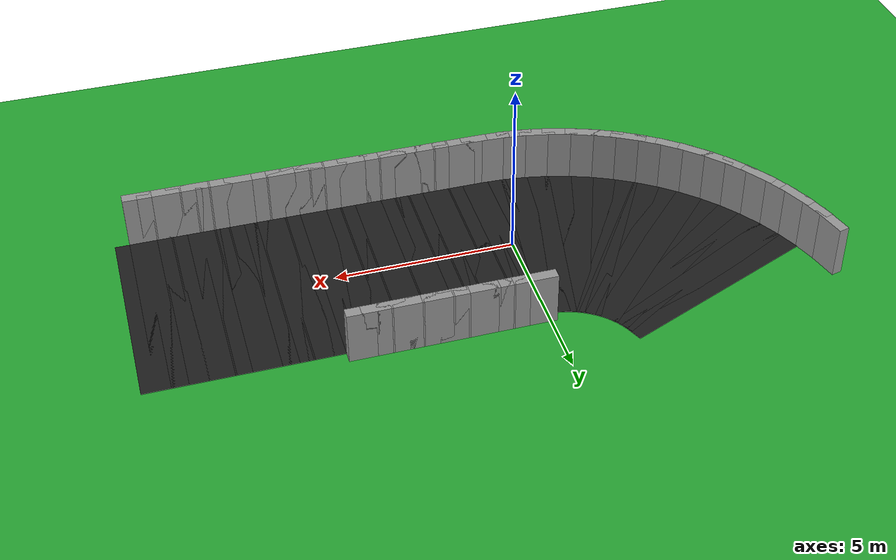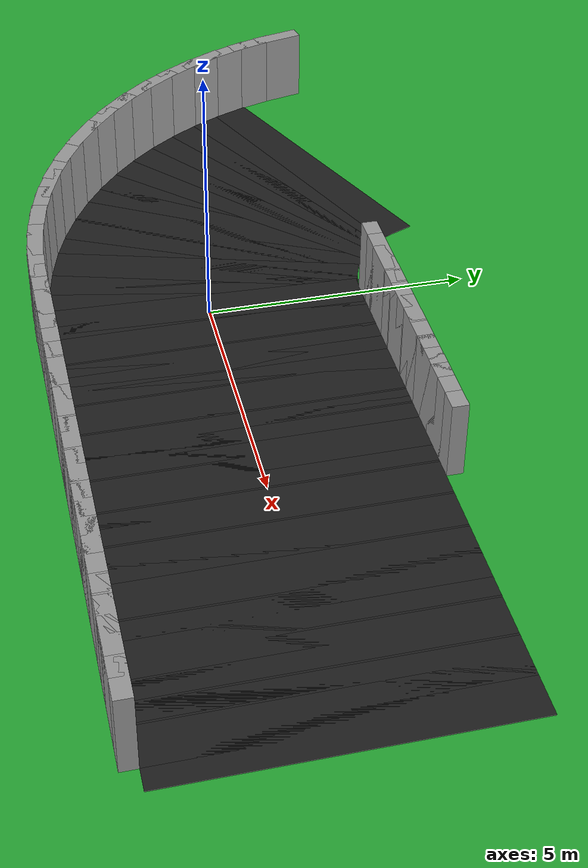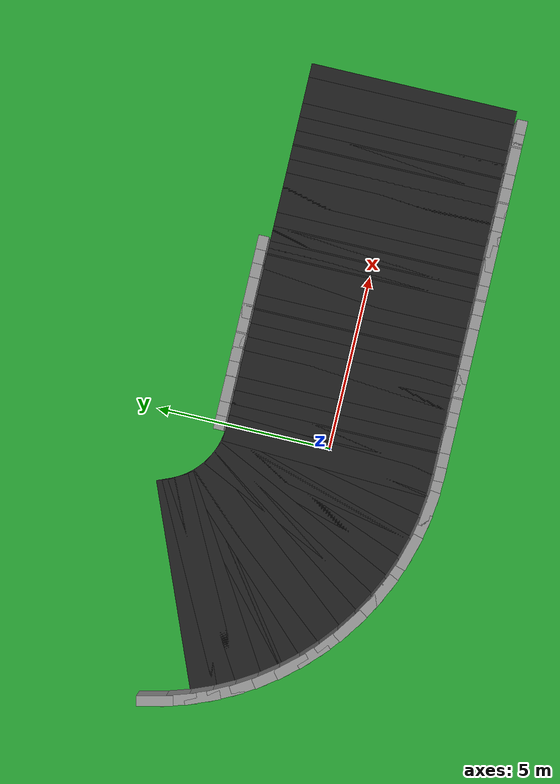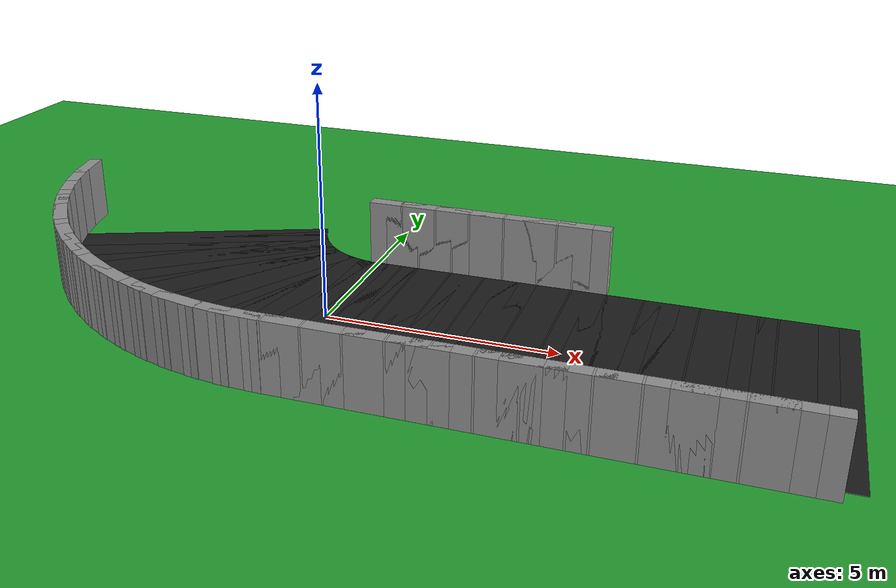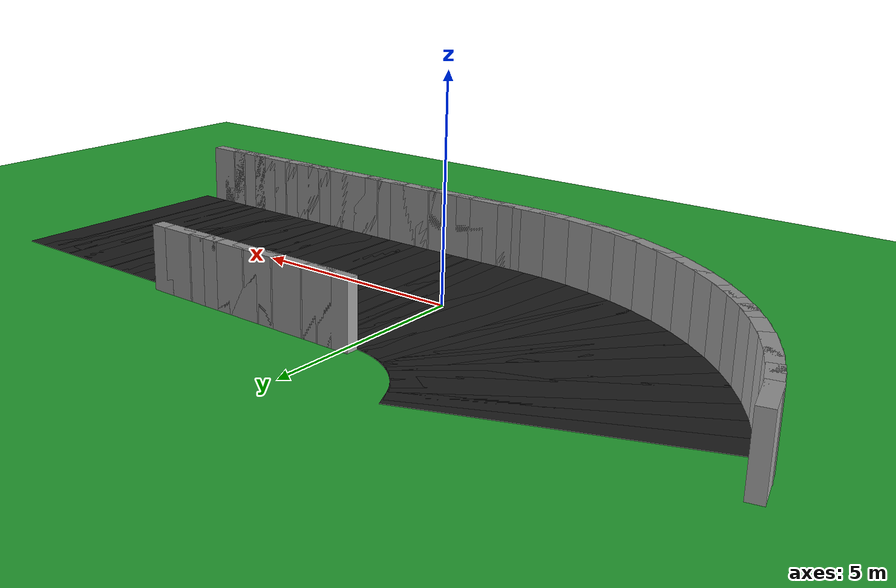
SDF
<sdf version="1.6">
 <world name="loop_road">
  <include><uri>model://sun</uri></include>
  <model name="ground_plane">
   <static>true</static>
   <link name="link">
    <collision name="collision">
     <surface><friction><ode><mu>100</mu><mu2>50</mu2></ode></friction></surface>
     <geometry><plane><normal>0 0 1</normal><size>120 120</size></plane></geometry>
    </collision>
    <visual name="visual">
     <geometry><plane><normal>0 0 1</normal><size>120 120</size></plane></geometry>
     <material>
      <script><uri>file://media/materials/scripts/gazebo.material</uri><name>Gazebo/Green</name></script>
     </material>
    </visual>
   </link>
  </model>
  <model name="asphalt_0">
   <static>true</static>
   <pose>0.200 0.000 0.005 0 0 0.00000</pose>
   <link name="link">
    <visual name="visual">
     <geometry><box><size>0.760 6.000 0.010</size></box></geometry>
     <material>
      <script><uri>file://media/materials/scripts/gazebo.material</uri><name>Gazebo/Black</name></script>
     </material>
    </visual>
   </link>
  </model>
  <model name="curbL_0">
   <static>true</static>
   <pose>0.200 3.150 0.750 0 0 0.00000</pose>
   <link name="link">
    <collision name="collision"><geometry><box><size>0.760 0.300 1.500</size></box></geometry></collision>
    <visual name="visual">
     <geometry><box><size>0.760 0.300 1.500</size></box></geometry>
     <material>
      <script><uri>file://media/materials/scripts/gazebo.material</uri><name>Gazebo/Grey</name></script>
     </material>
    </visual>
   </link>
  </model>
  <model name="curbR_0">
   <static>true</static>
   <pose>0.200 -3.150 0.750 0 0 0.00000</pose>
   <link name="link">
    <collision name="collision"><geometry><box><size>0.760 0.300 1.500</size></box></geometry></collision>
    <visual name="visual">
     <geometry><box><size>0.760 0.300 1.500</size></box></geometry>
     <material>
      <script><uri>file://media/materials/scripts/gazebo.material</uri><name>Gazebo/Grey</name></script>
     </material>
    </visual>
   </link>
  </model>
  <model name="asphalt_1">
   <static>true</static>
   <pose>0.600 0.000 0.005 0 0 0.00000</pose>
   <link name="link">
    <visual name="visual">
     <geometry><box><size>0.760 6.000 0.010</size></box></geometry>
     <material>
      <script><uri>file://media/materials/scripts/gazebo.material</uri><name>Gazebo/Black</name></script>
     </material>
    </visual>
   </link>
  </model>
  <model name="curbL_1">
   <static>true</static>
   <pose>0.600 3.150 0.750 0 0 0.00000</pose>
   <link name="link">
    <collision name="collision"><geometry><box><size>0.760 0.300 1.500</size></box></geometry></collision>
    <visual name="visual">
     <geometry><box><size>0.760 0.300 1.500</size></box></geometry>
     <material>
      <script><uri>file://media/materials/scripts/gazebo.material</uri><name>Gazebo/Grey</name></script>
     </material>
    </visual>
   </link>
  </model>
  <model name="curbR_1">
   <static>true</static>
   <pose>0.600 -3.150 0.750 0 0 0.00000</pose>
   <link name="link">
    <collision name="collision"><geometry><box><size>0.760 0.300 1.500</size></box></geometry></collision>
    <visual name="visual">
     <geometry><box><size>0.760 0.300 1.500</size></box></geometry>
     <material>
      <script><uri>file://media/materials/scripts/gazebo.material</uri><name>Gazebo/Grey</name></script>
     </material>
    </visual>
   </link>
  </model>
  <model name="asphalt_2">
   <static>true</static>
   <pose>1.000 0.000 0.005 0 0 0.00000</pose>
   <link name="link">
    <visual name="visual">
     <geometry><box><size>0.760 6.000 0.010</size></box></geometry>
     <material>
      <script><uri>file://media/materials/scripts/gazebo.material</uri><name>Gazebo/Black</name></script>
     </material>
    </visual>
   </link>
  </model>
  <model name="curbL_2">
   <static>true</static>
   <pose>1.000 3.150 0.750 0 0 0.00000</pose>
   <link name="link">
    <collision name="collision"><geometry><box><size>0.760 0.300 1.500</size></box></geometry></collision>
    <visual name="visual">
     <geometry><box><size>0.760 0.300 1.500</size></box></geometry>
     <material>
      <script><uri>file://media/materials/scripts/gazebo.material</uri><name>Gazebo/Grey</name></script>
     </material>
    </visual>
   </link>
  </model>
  <model name="curbR_2">
   <static>true</static>
   <pose>1.000 -3.150 0.750 0 0 0.00000</pose>
   <link name="link">
    <collision name="collision"><geometry><box><size>0.760 0.300 1.500</size></box></geometry></collision>
    <visual name="visual">
     <geometry><box><size>0.760 0.300 1.500</size></box></geometry>
     <material>
      <script><uri>file://media/materials/scripts/gazebo.material</uri><name>Gazebo/Grey</name></script>
     </material>
    </visual>
   </link>
  </model>
  <model name="asphalt_3">
   <static>true</static>
   <pose>1.400 0.000 0.005 0 0 0.00000</pose>
   <link name="link">
    <visual name="visual">
     <geometry><box><size>0.760 6.000 0.010</size></box></geometry>
     <material>
      <script><uri>file://media/materials/scripts/gazebo.material</uri><name>Gazebo/Black</name></script>
     </material>
    </visual>
   </link>
  </model>
  <model name="curbL_3">
   <static>true</static>
   <pose>1.400 3.150 0.750 0 0 0.00000</pose>
   <link name="link">
    <collision name="collision"><geometry><box><size>0.760 0.300 1.500</size></box></geometry></collision>
    <visual name="visual">
     <geometry><box><size>0.760 0.300 1.500</size></box></geometry>
     <material>
      <script><uri>file://media/materials/scripts/gazebo.material</uri><name>Gazebo/Grey</name></script>
     </material>
    </visual>
   </link>
  </model>
  <model name="curbR_3">
   <static>true</static>
   <pose>1.400 -3.150 0.750 0 0 0.00000</pose>
   <link name="link">
    <collision name="collision"><geometry><box><size>0.760 0.300 1.500</size></box></geometry></collision>
    <visual name="visual">
     <geometry><box><size>0.760 0.300 1.500</size></box></geometry>
     <material>
      <script><uri>file://media/materials/scripts/gazebo.material</uri><name>Gazebo/Grey</name></script>
     </material>
    </visual>
   </link>
  </model>
  <model name="asphalt_4">
   <static>true</static>
   <pose>1.800 0.000 0.005 0 0 0.00000</pose>
   <link name="link">
    <visual name="visual">
     <geometry><box><size>0.760 6.000 0.010</size></box></geometry>
     <material>
      <script><uri>file://media/materials/scripts/gazebo.material</uri><name>Gazebo/Black</name></script>
     </material>
    </visual>
   </link>
  </model>
  <model name="curbL_4">
   <static>true</static>
   <pose>1.800 3.150 0.750 0 0 0.00000</pose>
   <link name="link">
    <collision name="collision"><geometry><box><size>0.760 0.300 1.500</size></box></geometry></collision>
    <visual name="visual">
     <geometry><box><size>0.760 0.300 1.500</size></box></geometry>
     <material>
      <script><uri>file://media/materials/scripts/gazebo.material</uri><name>Gazebo/Grey</name></script>
     </material>
    </visual>
   </link>
  </model>
  <model name="curbR_4">
   <static>true</static>
   <pose>1.800 -3.150 0.750 0 0 0.00000</pose>
   <link name="link">
    <collision name="collision"><geometry><box><size>0.760 0.300 1.500</size></box></geometry></collision>
    <visual name="visual">
     <geometry><box><size>0.760 0.300 1.500</size></box></geometry>
     <material>
      <script><uri>file://media/materials/scripts/gazebo.material</uri><name>Gazebo/Grey</name></script>
     </material>
    </visual>
   </link>
  </model>
  <model name="asphalt_5">
   <static>true</static>
   <pose>2.200 0.000 0.005 0 0 0.00000</pose>
   <link name="link">
    <visual name="visual">
     <geometry><box><size>0.760 6.000 0.010</size></box></geometry>
     <material>
      <script><uri>file://media/materials/scripts/gazebo.material</uri><name>Gazebo/Black</name></script>
     </material>
    </visual>
   </link>
  </model>
  <model name="curbL_5">
   <static>true</static>
   <pose>2.200 3.150 0.750 0 0 0.00000</pose>
   <link name="link">
    <collision name="collision"><geometry><box><size>0.760 0.300 1.500</size></box></geometry></collision>
    <visual name="visual">
     <geometry><box><size>0.760 0.300 1.500</size></box></geometry>
     <material>
      <script><uri>file://media/materials/scripts/gazebo.material</uri><name>Gazebo/Grey</name></script>
     </material>
    </visual>
   </link>
  </model>
  <model name="curbR_5">
   <static>true</static>
   <pose>2.200 -3.150 0.750 0 0 0.00000</pose>
   <link name="link">
    <collision name="collision"><geometry><box><size>0.760 0.300 1.500</size></box></geometry></collision>
    <visual name="visual">
     <geometry><box><size>0.760 0.300 1.500</size></box></geometry>
     <material>
      <script><uri>file://media/materials/scripts/gazebo.material</uri><name>Gazebo/Grey</name></script>
     </material>
    </visual>
   </link>
  </model>
  <model name="asphalt_6">
   <static>true</static>
   <pose>2.600 0.000 0.005 0 0 0.00000</pose>
   <link name="link">
    <visual name="visual">
     <geometry><box><size>0.760 6.000 0.010</size></box></geometry>
     <material>
      <script><uri>file://media/materials/scripts/gazebo.material</uri><name>Gazebo/Black</name></script>
     </material>
    </visual>
   </link>
  </model>
  <model name="curbL_6">
   <static>true</static>
   <pose>2.600 3.150 0.750 0 0 0.00000</pose>
   <link name="link">
    <collision name="collision"><geometry><box><size>0.760 0.300 1.500</size></box></geometry></collision>
    <visual name="visual">
     <geometry><box><size>0.760 0.300 1.500</size></box></geometry>
     <material>
      <script><uri>file://media/materials/scripts/gazebo.material</uri><name>Gazebo/Grey</name></script>
     </material>
    </visual>
   </link>
  </model>
  <model name="curbR_6">
   <static>true</static>
   <pose>2.600 -3.150 0.750 0 0 0.00000</pose>
   <link name="link">
    <collision name="collision"><geometry><box><size>0.760 0.300 1.500</size></box></geometry></collision>
    <visual name="visual">
     <geometry><box><size>0.760 0.300 1.500</size></box></geometry>
     <material>
      <script><uri>file://media/materials/scripts/gazebo.material</uri><name>Gazebo/Grey</name></script>
     </material>
    </visual>
   </link>
  </model>
  <model name="asphalt_7">
   <static>true</static>
   <pose>3.000 0.000 0.005 0 0 0.00000</pose>
   <link name="link">
    <visual name="visual">
     <geometry><box><size>0.760 6.000 0.010</size></box></geometry>
     <material>
      <script><uri>file://media/materials/scripts/gazebo.material</uri><name>Gazebo/Black</name></script>
     </material>
    </visual>
   </link>
  </model>
  <model name="curbL_7">
   <static>true</static>
   <pose>3.000 3.150 0.750 0 0 0.00000</pose>
   <link name="link">
    <collision name="collision"><geometry><box><size>0.760 0.300 1.500</size></box></geometry></collision>
    <visual name="visual">
     <geometry><box><size>0.760 0.300 1.500</size></box></geometry>
     <material>
      <script><uri>file://media/materials/scripts/gazebo.material</uri><name>Gazebo/Grey</name></script>
     </material>
    </visual>
   </link>
  </model>
  <model name="curbR_7">
   <static>true</static>
   <pose>3.000 -3.150 0.750 0 0 0.00000</pose>
   <link name="link">
    <collision name="collision"><geometry><box><size>0.760 0.300 1.500</size></box></geometry></collision>
    <visual name="visual">
     <geometry><box><size>0.760 0.300 1.500</size></box></geometry>
     <material>
      <script><uri>file://media/materials/scripts/gazebo.material</uri><name>Gazebo/Grey</name></script>
     </material>
    </visual>
   </link>
  </model>
  <model name="asphalt_8">
   <static>true</static>
   <pose>3.400 0.000 0.005 0 0 0.00000</pose>
   <link name="link">
    <visual name="visual">
     <geometry><box><size>0.760 6.000 0.010</size></box></geometry>
     <material>
      <script><uri>file://media/materials/scripts/gazebo.material</uri><name>Gazebo/Black</name></script>
     </material>
    </visual>
   </link>
  </model>
  <model name="curbL_8">
   <static>true</static>
   <pose>3.400 3.150 0.750 0 0 0.00000</pose>
   <link name="link">
    <collision name="collision"><geometry><box><size>0.760 0.300 1.500</size></box></geometry></collision>
    <visual name="visual">
     <geometry><box><size>0.760 0.300 1.500</size></box></geometry>
     <material>
      <script><uri>file://media/materials/scripts/gazebo.material</uri><name>Gazebo/Grey</name></script>
     </material>
    </visual>
   </link>
  </model>
  <model name="curbR_8">
   <static>true</static>
   <pose>3.400 -3.150 0.750 0 0 0.00000</pose>
   <link name="link">
    <collision name="collision"><geometry><box><size>0.760 0.300 1.500</size></box></geometry></collision>
    <visual name="visual">
     <geometry><box><size>0.760 0.300 1.500</size></box></geometry>
     <material>
      <script><uri>file://media/materials/scripts/gazebo.material</uri><name>Gazebo/Grey</name></script>
     </material>
    </visual>
   </link>
  </model>
  <model name="asphalt_9">
   <static>true</static>
   <pose>3.800 0.000 0.005 0 0 0.00000</pose>
   <link name="link">
    <visual name="visual">
     <geometry><box><size>0.760 6.000 0.010</size></box></geometry>
     <material>
      <script><uri>file://media/materials/scripts/gazebo.material</uri><name>Gazebo/Black</name></script>
     </material>
    </visual>
   </link>
  </model>
  <model name="curbL_9">
   <static>true</static>
   <pose>3.800 3.150 0.750 0 0 0.00000</pose>
   <link name="link">
    <collision name="collision"><geometry><box><size>0.760 0.300 1.500</size></box></geometry></collision>
    <visual name="visual">
     <geometry><box><size>0.760 0.300 1.500</size></box></geometry>
     <material>
      <script><uri>file://media/materials/scripts/gazebo.material</uri><name>Gazebo/Grey</name></script>
     </material>
    </visual>
   </link>
  </model>
  <model name="curbR_9">
   <static>true</static>
   <pose>3.800 -3.150 0.750 0 0 0.00000</pose>
   <link name="link">
    <collision name="collision"><geometry><box><size>0.760 0.300 1.500</size></box></geometry></collision>
    <visual name="visual">
     <geometry><box><size>0.760 0.300 1.500</size></box></geometry>
     <material>
      <script><uri>file://media/materials/scripts/gazebo.material</uri><name>Gazebo/Grey</name></script>
     </material>
    </visual>
   </link>
  </model>
  <model name="asphalt_10">
   <static>true</static>
   <pose>4.200 0.000 0.005 0 0 0.00000</pose>
   <link name="link">
    <visual name="visual">
     <geometry><box><size>0.760 6.000 0.010</size></box></geometry>
     <material>
      <script><uri>file://media/materials/scripts/gazebo.material</uri><name>Gazebo/Black</name></script>
     </material>
    </visual>
   </link>
  </model>
  <model name="curbL_10">
   <static>true</static>
   <pose>4.200 3.150 0.750 0 0 0.00000</pose>
   <link name="link">
    <collision name="collision"><geometry><box><size>0.760 0.300 1.500</size></box></geometry></collision>
    <visual name="visual">
     <geometry><box><size>0.760 0.300 1.500</size></box></geometry>
     <material>
      <script><uri>file://media/materials/scripts/gazebo.material</uri><name>Gazebo/Grey</name></script>
     </material>
    </visual>
   </link>
  </model>
  <model name="curbR_10">
   <static>true</static>
   <pose>4.200 -3.150 0.750 0 0 0.00000</pose>
   <link name="link">
    <collision name="collision"><geometry><box><size>0.760 0.300 1.500</size></box></geometry></collision>
    <visual name="visual">
     <geometry><box><size>0.760 0.300 1.500</size></box></geometry>
     <material>
      <script><uri>file://media/materials/scripts/gazebo.material</uri><name>Gazebo/Grey</name></script>
     </material>
    </visual>
   </link>
  </model>
  <model name="asphalt_11">
   <static>true</static>
   <pose>4.600 0.000 0.005 0 0 0.00000</pose>
   <link name="link">
    <visual name="visual">
     <geometry><box><size>0.760 6.000 0.010</size></box></geometry>
     <material>
      <script><uri>file://media/materials/scripts/gazebo.material</uri><name>Gazebo/Black</name></script>
     </material>
    </visual>
   </link>
  </model>
  <model name="curbL_11">
   <static>true</static>
   <pose>4.600 3.150 0.750 0 0 0.00000</pose>
   <link name="link">
    <collision name="collision"><geometry><box><size>0.760 0.300 1.500</size></box></geometry></collision>
    <visual name="visual">
     <geometry><box><size>0.760 0.300 1.500</size></box></geometry>
     <material>
      <script><uri>file://media/materials/scripts/gazebo.material</uri><name>Gazebo/Grey</name></script>
     </material>
    </visual>
   </link>
  </model>
  <model name="curbR_11">
   <static>true</static>
   <pose>4.600 -3.150 0.750 0 0 0.00000</pose>
   <link name="link">
    <collision name="collision"><geometry><box><size>0.760 0.300 1.500</size></box></geometry></collision>
    <visual name="visual">
     <geometry><box><size>0.760 0.300 1.500</size></box></geometry>
     <material>
      <script><uri>file://media/materials/scripts/gazebo.material</uri><name>Gazebo/Grey</name></script>
     </material>
    </visual>
   </link>
  </model>
  <model name="asphalt_12">
   <static>true</static>
   <pose>5.000 0.000 0.005 0 0 0.00000</pose>
   <link name="link">
    <visual name="visual">
     <geometry><box><size>0.760 6.000 0.010</size></box></geometry>
     <material>
      <script><uri>file://media/materials/scripts/gazebo.material</uri><name>Gazebo/Black</name></script>
     </material>
    </visual>
   </link>
  </model>
  <model name="curbL_12">
   <static>true</static>
   <pose>5.000 3.150 0.750 0 0 0.00000</pose>
   <link name="link">
    <collision name="collision"><geometry><box><size>0.760 0.300 1.500</size></box></geometry></collision>
    <visual name="visual">
     <geometry><box><size>0.760 0.300 1.500</size></box></geometry>
     <material>
      <script><uri>file://media/materials/scripts/gazebo.material</uri><name>Gazebo/Grey</name></script>
     </material>
    </visual>
   </link>
  </model>
  <model name="curbR_12">
   <static>true</static>
   <pose>5.000 -3.150 0.750 0 0 0.00000</pose>
   <link name="link">
    <collision name="collision"><geometry><box><size>0.760 0.300 1.500</size></box></geometry></collision>
    <visual name="visual">
     <geometry><box><size>0.760 0.300 1.500</size></box></geometry>
     <material>
      <script><uri>file://media/materials/scripts/gazebo.material</uri><name>Gazebo/Grey</name></script>
     </material>
    </visual>
   </link>
  </model>
  <model name="asphalt_13">
   <static>true</static>
   <pose>5.400 0.000 0.005 0 0 0.00000</pose>
   <link name="link">
    <visual name="visual">
     <geometry><box><size>0.760 6.000 0.010</size></box></geometry>
     <material>
      <script><uri>file://media/materials/scripts/gazebo.material</uri><name>Gazebo/Black</name></script>
     </material>
    </visual>
   </link>
  </model>
  <model name="curbR_13">
   <static>true</static>
   <pose>5.400 -3.150 0.750 0 0 0.00000</pose>
   <link name="link">
    <collision name="collision"><geometry><box><size>0.760 0.300 1.500</size></box></geometry></collision>
    <visual name="visual">
     <geometry><box><size>0.760 0.300 1.500</size></box></geometry>
     <material>
      <script><uri>file://media/materials/scripts/gazebo.material</uri><name>Gazebo/Grey</name></script>
     </material>
    </visual>
   </link>
  </model>
  <model name="asphalt_14">
   <static>true</static>
   <pose>5.800 0.000 0.005 0 0 0.00000</pose>
   <link name="link">
    <visual name="visual">
     <geometry><box><size>0.760 6.000 0.010</size></box></geometry>
     <material>
      <script><uri>file://media/materials/scripts/gazebo.material</uri><name>Gazebo/Black</name></script>
     </material>
    </visual>
   </link>
  </model>
  <model name="curbR_14">
   <static>true</static>
   <pose>5.800 -3.150 0.750 0 0 0.00000</pose>
   <link name="link">
    <collision name="collision"><geometry><box><size>0.760 0.300 1.500</size></box></geometry></collision>
    <visual name="visual">
     <geometry><box><size>0.760 0.300 1.500</size></box></geometry>
     <material>
      <script><uri>file://media/materials/scripts/gazebo.material</uri><name>Gazebo/Grey</name></script>
     </material>
    </visual>
   </link>
  </model>
  <model name="asphalt_15">
   <static>true</static>
   <pose>6.200 0.000 0.005 0 0 0.00000</pose>
   <link name="link">
    <visual name="visual">
     <geometry><box><size>0.760 6.000 0.010</size></box></geometry>
     <material>
      <script><uri>file://media/materials/scripts/gazebo.material</uri><name>Gazebo/Black</name></script>
     </material>
    </visual>
   </link>
  </model>
  <model name="curbR_15">
   <static>true</static>
   <pose>6.200 -3.150 0.750 0 0 0.00000</pose>
   <link name="link">
    <collision name="collision"><geometry><box><size>0.760 0.300 1.500</size></box></geometry></collision>
    <visual name="visual">
     <geometry><box><size>0.760 0.300 1.500</size></box></geometry>
     <material>
      <script><uri>file://media/materials/scripts/gazebo.material</uri><name>Gazebo/Grey</name></script>
     </material>
    </visual>
   </link>
  </model>
  <model name="asphalt_16">
   <static>true</static>
   <pose>6.600 0.000 0.005 0 0 0.00000</pose>
   <link name="link">
    <visual name="visual">
     <geometry><box><size>0.760 6.000 0.010</size></box></geometry>
     <material>
      <script><uri>file://media/materials/scripts/gazebo.material</uri><name>Gazebo/Black</name></script>
     </material>
    </visual>
   </link>
  </model>
  <model name="curbR_16">
   <static>true</static>
   <pose>6.600 -3.150 0.750 0 0 0.00000</pose>
   <link name="link">
    <collision name="collision"><geometry><box><size>0.760 0.300 1.500</size></box></geometry></collision>
    <visual name="visual">
     <geometry><box><size>0.760 0.300 1.500</size></box></geometry>
     <material>
      <script><uri>file://media/materials/scripts/gazebo.material</uri><name>Gazebo/Grey</name></script>
     </material>
    </visual>
   </link>
  </model>
  <model name="asphalt_17">
   <static>true</static>
   <pose>7.000 0.000 0.005 0 0 0.00000</pose>
   <link name="link">
    <visual name="visual">
     <geometry><box><size>0.760 6.000 0.010</size></box></geometry>
     <material>
      <script><uri>file://media/materials/scripts/gazebo.material</uri><name>Gazebo/Black</name></script>
     </material>
    </visual>
   </link>
  </model>
  <model name="curbR_17">
   <static>true</static>
   <pose>7.000 -3.150 0.750 0 0 0.00000</pose>
   <link name="link">
    <collision name="collision"><geometry><box><size>0.760 0.300 1.500</size></box></geometry></collision>
    <visual name="visual">
     <geometry><box><size>0.760 0.300 1.500</size></box></geometry>
     <material>
      <script><uri>file://media/materials/scripts/gazebo.material</uri><name>Gazebo/Grey</name></script>
     </material>
    </visual>
   </link>
  </model>
  <model name="asphalt_18">
   <static>true</static>
   <pose>7.400 0.000 0.005 0 0 0.00000</pose>
   <link name="link">
    <visual name="visual">
     <geometry><box><size>0.760 6.000 0.010</size></box></geometry>
     <material>
      <script><uri>file://media/materials/scripts/gazebo.material</uri><name>Gazebo/Black</name></script>
     </material>
    </visual>
   </link>
  </model>
  <model name="curbR_18">
   <static>true</static>
   <pose>7.400 -3.150 0.750 0 0 0.00000</pose>
   <link name="link">
    <collision name="collision"><geometry><box><size>0.760 0.300 1.500</size></box></geometry></collision>
    <visual name="visual">
     <geometry><box><size>0.760 0.300 1.500</size></box></geometry>
     <material>
      <script><uri>file://media/materials/scripts/gazebo.material</uri><name>Gazebo/Grey</name></script>
     </material>
    </visual>
   </link>
  </model>
  <model name="asphalt_19">
   <static>true</static>
   <pose>7.800 0.000 0.005 0 0 0.00000</pose>
   <link name="link">
    <visual name="visual">
     <geometry><box><size>0.760 6.000 0.010</size></box></geometry>
     <material>
      <script><uri>file://media/materials/scripts/gazebo.material</uri><name>Gazebo/Black</name></script>
     </material>
    </visual>
   </link>
  </model>
  <model name="curbR_19">
   <static>true</static>
   <pose>7.800 -3.150 0.750 0 0 0.00000</pose>
   <link name="link">
    <collision name="collision"><geometry><box><size>0.760 0.300 1.500</size></box></geometry></collision>
    <visual name="visual">
     <geometry><box><size>0.760 0.300 1.500</size></box></geometry>
     <material>
      <script><uri>file://media/materials/scripts/gazebo.material</uri><name>Gazebo/Grey</name></script>
     </material>
    </visual>
   </link>
  </model>
  <model name="asphalt_20">
   <static>true</static>
   <pose>8.200 0.000 0.005 0 0 0.00000</pose>
   <link name="link">
    <visual name="visual">
     <geometry><box><size>0.760 6.000 0.010</size></box></geometry>
     <material>
      <script><uri>file://media/materials/scripts/gazebo.material</uri><name>Gazebo/Black</name></script>
     </material>
    </visual>
   </link>
  </model>
  <model name="curbR_20">
   <static>true</static>
   <pose>8.200 -3.150 0.750 0 0 0.00000</pose>
   <link name="link">
    <collision name="collision"><geometry><box><size>0.760 0.300 1.500</size></box></geometry></collision>
    <visual name="visual">
     <geometry><box><size>0.760 0.300 1.500</size></box></geometry>
     <material>
      <script><uri>file://media/materials/scripts/gazebo.material</uri><name>Gazebo/Grey</name></script>
     </material>
    </visual>
   </link>
  </model>
  <model name="asphalt_21">
   <static>true</static>
   <pose>8.600 0.000 0.005 0 0 0.00000</pose>
   <link name="link">
    <visual name="visual">
     <geometry><box><size>0.760 6.000 0.010</size></box></geometry>
     <material>
      <script><uri>file://media/materials/scripts/gazebo.material</uri><name>Gazebo/Black</name></script>
     </material>
    </visual>
   </link>
  </model>
  <model name="curbR_21">
   <static>true</static>
   <pose>8.600 -3.150 0.750 0 0 0.00000</pose>
   <link name="link">
    <collision name="collision"><geometry><box><size>0.760 0.300 1.500</size></box></geometry></collision>
    <visual name="visual">
     <geometry><box><size>0.760 0.300 1.500</size></box></geometry>
     <material>
      <script><uri>file://media/materials/scripts/gazebo.material</uri><name>Gazebo/Grey</name></script>
     </material>
    </visual>
   </link>
  </model>
  <model name="asphalt_22">
   <static>true</static>
   <pose>9.000 0.000 0.005 0 0 0.00000</pose>
   <link name="link">
    <visual name="visual">
     <geometry><box><size>0.760 6.000 0.010</size></box></geometry>
     <material>
      <script><uri>file://media/materials/scripts/gazebo.material</uri><name>Gazebo/Black</name></script>
     </material>
    </visual>
   </link>
  </model>
  <model name="curbR_22">
   <static>true</static>
   <pose>9.000 -3.150 0.750 0 0 0.00000</pose>
   <link name="link">
    <collision name="collision"><geometry><box><size>0.760 0.300 1.500</size></box></geometry></collision>
    <visual name="visual">
     <geometry><box><size>0.760 0.300 1.500</size></box></geometry>
     <material>
      <script><uri>file://media/materials/scripts/gazebo.material</uri><name>Gazebo/Grey</name></script>
     </material>
    </visual>
   </link>
  </model>
  <model name="asphalt_23">
   <static>true</static>
   <pose>9.400 0.000 0.005 0 0 0.00000</pose>
   <link name="link">
    <visual name="visual">
     <geometry><box><size>0.760 6.000 0.010</size></box></geometry>
     <material>
      <script><uri>file://media/materials/scripts/gazebo.material</uri><name>Gazebo/Black</name></script>
     </material>
    </visual>
   </link>
  </model>
  <model name="curbR_23">
   <static>true</static>
   <pose>9.400 -3.150 0.750 0 0 0.00000</pose>
   <link name="link">
    <collision name="collision"><geometry><box><size>0.760 0.300 1.500</size></box></geometry></collision>
    <visual name="visual">
     <geometry><box><size>0.760 0.300 1.500</size></box></geometry>
     <material>
      <script><uri>file://media/materials/scripts/gazebo.material</uri><name>Gazebo/Grey</name></script>
     </material>
    </visual>
   </link>
  </model>
  <model name="asphalt_24">
   <static>true</static>
   <pose>9.800 0.000 0.005 0 0 0.00000</pose>
   <link name="link">
    <visual name="visual">
     <geometry><box><size>0.760 6.000 0.010</size></box></geometry>
     <material>
      <script><uri>file://media/materials/scripts/gazebo.material</uri><name>Gazebo/Black</name></script>
     </material>
    </visual>
   </link>
  </model>
  <model name="curbR_24">
   <static>true</static>
   <pose>9.800 -3.150 0.750 0 0 0.00000</pose>
   <link name="link">
    <collision name="collision"><geometry><box><size>0.760 0.300 1.500</size></box></geometry></collision>
    <visual name="visual">
     <geometry><box><size>0.760 0.300 1.500</size></box></geometry>
     <material>
      <script><uri>file://media/materials/scripts/gazebo.material</uri><name>Gazebo/Grey</name></script>
     </material>
    </visual>
   </link>
  </model>
  <model name="asphalt_25">
   <static>true</static>
   <pose>10.200 0.000 0.005 0 0 0.00000</pose>
   <link name="link">
    <visual name="visual">
     <geometry><box><size>0.760 6.000 0.010</size></box></geometry>
     <material>
      <script><uri>file://media/materials/scripts/gazebo.material</uri><name>Gazebo/Black</name></script>
     </material>
    </visual>
   </link>
  </model>
  <model name="curbR_203">
   <static>true</static>
   <pose>-7.930 3.143 0.750 0 0 -1.34059</pose>
   <link name="link">
    <collision name="collision"><geometry><box><size>1.022 0.300 1.500</size></box></geometry></collision>
    <visual name="visual">
     <geometry><box><size>1.022 0.300 1.500</size></box></geometry>
     <material>
      <script><uri>file://media/materials/scripts/gazebo.material</uri><name>Gazebo/Grey</name></script>
     </material>
    </visual>
   </link>
  </model>
  <model name="curbR_204">
   <static>true</static>
   <pose>-7.753 2.506 0.750 0 0 -1.25935</pose>
   <link name="link">
    <collision name="collision"><geometry><box><size>1.022 0.300 1.500</size></box></geometry></collision>
    <visual name="visual">
     <geometry><box><size>1.022 0.300 1.500</size></box></geometry>
     <material>
      <script><uri>file://media/materials/scripts/gazebo.material</uri><name>Gazebo/Grey</name></script>
     </material>
    </visual>
   </link>
  </model>
  <model name="asphalt_205">
   <static>true</static>
   <pose>-4.617 3.089 0.005 0 0 -1.17810</pose>
   <link name="link">
    <visual name="visual">
     <geometry><box><size>0.766 6.000 0.010</size></box></geometry>
     <material>
      <script><uri>file://media/materials/scripts/gazebo.material</uri><name>Gazebo/Black</name></script>
     </material>
    </visual>
   </link>
  </model>
  <model name="curbR_205">
   <static>true</static>
   <pose>-7.525 1.885 0.750 0 0 -1.17810</pose>
   <link name="link">
    <collision name="collision"><geometry><box><size>1.022 0.300 1.500</size></box></geometry></collision>
    <visual name="visual">
     <geometry><box><size>1.022 0.300 1.500</size></box></geometry>
     <material>
      <script><uri>file://media/materials/scripts/gazebo.material</uri><name>Gazebo/Grey</name></script>
     </material>
    </visual>
   </link>
  </model>
  <model name="asphalt_206">
   <static>true</static>
   <pose>-4.446 2.721 0.005 0 0 -1.09685</pose>
   <link name="link">
    <visual name="visual">
     <geometry><box><size>0.766 6.000 0.010</size></box></geometry>
     <material>
      <script><uri>file://media/materials/scripts/gazebo.material</uri><name>Gazebo/Black</name></script>
     </material>
    </visual>
   </link>
  </model>
  <model name="curbR_206">
   <static>true</static>
   <pose>-7.247 1.284 0.750 0 0 -1.09685</pose>
   <link name="link">
    <collision name="collision"><geometry><box><size>1.022 0.300 1.500</size></box></geometry></collision>
    <visual name="visual">
     <geometry><box><size>1.022 0.300 1.500</size></box></geometry>
     <material>
      <script><uri>file://media/materials/scripts/gazebo.material</uri><name>Gazebo/Grey</name></script>
     </material>
    </visual>
   </link>
  </model>
  <model name="asphalt_207">
   <static>true</static>
   <pose>-4.247 2.367 0.005 0 0 -1.01560</pose>
   <link name="link">
    <visual name="visual">
     <geometry><box><size>0.766 6.000 0.010</size></box></geometry>
     <material>
      <script><uri>file://media/materials/scripts/gazebo.material</uri><name>Gazebo/Black</name></script>
     </material>
    </visual>
   </link>
  </model>
  <model name="curbR_207">
   <static>true</static>
   <pose>-6.921 0.708 0.750 0 0 -1.01560</pose>
   <link name="link">
    <collision name="collision"><geometry><box><size>1.022 0.300 1.500</size></box></geometry></collision>
    <visual name="visual">
     <geometry><box><size>1.022 0.300 1.500</size></box></geometry>
     <material>
      <script><uri>file://media/materials/scripts/gazebo.material</uri><name>Gazebo/Grey</name></script>
     </material>
    </visual>
   </link>
  </model>
  <model name="asphalt_208">
   <static>true</static>
   <pose>-4.019 2.031 0.005 0 0 -0.93435</pose>
   <link name="link">
    <visual name="visual">
     <geometry><box><size>0.766 6.000 0.010</size></box></geometry>
     <material>
      <script><uri>file://media/materials/scripts/gazebo.material</uri><name>Gazebo/Black</name></script>
     </material>
    </visual>
   </link>
  </model>
  <model name="curbR_208">
   <static>true</static>
   <pose>-6.550 0.161 0.750 0 0 -0.93435</pose>
   <link name="link">
    <collision name="collision"><geometry><box><size>1.022 0.300 1.500</size></box></geometry></collision>
    <visual name="visual">
     <geometry><box><size>1.022 0.300 1.500</size></box></geometry>
     <material>
      <script><uri>file://media/materials/scripts/gazebo.material</uri><name>Gazebo/Grey</name></script>
     </material>
    </visual>
   </link>
  </model>
  <model name="asphalt_209">
   <static>true</static>
   <pose>-3.765 1.715 0.005 0 0 -0.85310</pose>
   <link name="link">
    <visual name="visual">
     <geometry><box><size>0.766 6.000 0.010</size></box></geometry>
     <material>
      <script><uri>file://media/materials/scripts/gazebo.material</uri><name>Gazebo/Black</name></script>
     </material>
    </visual>
   </link>
  </model>
  <model name="curbR_209">
   <static>true</static>
   <pose>-6.136 -0.355 0.750 0 0 -0.85310</pose>
   <link name="link">
    <collision name="collision"><geometry><box><size>1.022 0.300 1.500</size></box></geometry></collision>
    <visual name="visual">
     <geometry><box><size>1.022 0.300 1.500</size></box></geometry>
     <material>
      <script><uri>file://media/materials/scripts/gazebo.material</uri><name>Gazebo/Grey</name></script>
     </material>
    </visual>
   </link>
  </model>
  <model name="asphalt_210">
   <static>true</static>
   <pose>-3.485 1.420 0.005 0 0 -0.77186</pose>
   <link name="link">
    <visual name="visual">
     <geometry><box><size>0.766 6.000 0.010</size></box></geometry>
     <material>
      <script><uri>file://media/materials/scripts/gazebo.material</uri><name>Gazebo/Black</name></script>
     </material>
    </visual>
   </link>
  </model>
  <model name="curbR_210">
   <static>true</static>
   <pose>-5.681 -0.835 0.750 0 0 -0.77186</pose>
   <link name="link">
    <collision name="collision"><geometry><box><size>1.022 0.300 1.500</size></box></geometry></collision>
    <visual name="visual">
     <geometry><box><size>1.022 0.300 1.500</size></box></geometry>
     <material>
      <script><uri>file://media/materials/scripts/gazebo.material</uri><name>Gazebo/Grey</name></script>
     </material>
    </visual>
   </link>
  </model>
  <model name="asphalt_211">
   <static>true</static>
   <pose>-3.183 1.149 0.005 0 0 -0.69061</pose>
   <link name="link">
    <visual name="visual">
     <geometry><box><size>0.766 6.000 0.010</size></box></geometry>
     <material>
      <script><uri>file://media/materials/scripts/gazebo.material</uri><name>Gazebo/Black</name></script>
     </material>
    </visual>
   </link>
  </model>
  <model name="curbR_211">
   <static>true</static>
   <pose>-5.188 -1.277 0.750 0 0 -0.69061</pose>
   <link name="link">
    <collision name="collision"><geometry><box><size>1.022 0.300 1.500</size></box></geometry></collision>
    <visual name="visual">
     <geometry><box><size>1.022 0.300 1.500</size></box></geometry>
     <material>
      <script><uri>file://media/materials/scripts/gazebo.material</uri><name>Gazebo/Grey</name></script>
     </material>
    </visual>
   </link>
  </model>
  <model name="asphalt_212">
   <static>true</static>
   <pose>-2.860 0.904 0.005 0 0 -0.60936</pose>
   <link name="link">
    <visual name="visual">
     <geometry><box><size>0.766 6.000 0.010</size></box></geometry>
     <material>
      <script><uri>file://media/materials/scripts/gazebo.material</uri><name>Gazebo/Black</name></script>
     </material>
    </visual>
   </link>
  </model>
  <model name="curbR_212">
   <static>true</static>
   <pose>-4.662 -1.677 0.750 0 0 -0.60936</pose>
   <link name="link">
    <collision name="collision"><geometry><box><size>1.022 0.300 1.500</size></box></geometry></collision>
    <visual name="visual">
     <geometry><box><size>1.022 0.300 1.500</size></box></geometry>
     <material>
      <script><uri>file://media/materials/scripts/gazebo.material</uri><name>Gazebo/Grey</name></script>
     </material>
    </visual>
   </link>
  </model>
  <model name="asphalt_213">
   <static>true</static>
   <pose>-2.518 0.685 0.005 0 0 -0.52811</pose>
   <link name="link">
    <visual name="visual">
     <geometry><box><size>0.766 6.000 0.010</size></box></geometry>
     <material>
      <script><uri>file://media/materials/scripts/gazebo.material</uri><name>Gazebo/Black</name></script>
     </material>
    </visual>
   </link>
  </model>
  <model name="curbR_213">
   <static>true</static>
   <pose>-4.104 -2.034 0.750 0 0 -0.52811</pose>
   <link name="link">
    <collision name="collision"><geometry><box><size>1.022 0.300 1.500</size></box></geometry></collision>
    <visual name="visual">
     <geometry><box><size>1.022 0.300 1.500</size></box></geometry>
     <material>
      <script><uri>file://media/materials/scripts/gazebo.material</uri><name>Gazebo/Grey</name></script>
     </material>
    </visual>
   </link>
  </model>
  <model name="asphalt_214">
   <static>true</static>
   <pose>-2.160 0.495 0.005 0 0 -0.44686</pose>
   <link name="link">
    <visual name="visual">
     <geometry><box><size>0.766 6.000 0.010</size></box></geometry>
     <material>
      <script><uri>file://media/materials/scripts/gazebo.material</uri><name>Gazebo/Black</name></script>
     </material>
    </visual>
   </link>
  </model>
  <model name="curbR_214">
   <static>true</static>
   <pose>-3.520 -2.344 0.750 0 0 -0.44686</pose>
   <link name="link">
    <collision name="collision"><geometry><box><size>1.022 0.300 1.500</size></box></geometry></collision>
    <visual name="visual">
     <geometry><box><size>1.022 0.300 1.500</size></box></geometry>
     <material>
      <script><uri>file://media/materials/scripts/gazebo.material</uri><name>Gazebo/Grey</name></script>
     </material>
    </visual>
   </link>
  </model>
  <model name="asphalt_215">
   <static>true</static>
   <pose>-1.787 0.334 0.005 0 0 -0.36562</pose>
   <link name="link">
    <visual name="visual">
     <geometry><box><size>0.766 6.000 0.010</size></box></geometry>
     <material>
      <script><uri>file://media/materials/scripts/gazebo.material</uri><name>Gazebo/Black</name></script>
     </material>
    </visual>
   </link>
  </model>
  <model name="curbR_215">
   <static>true</static>
   <pose>-2.912 -2.605 0.750 0 0 -0.36562</pose>
   <link name="link">
    <collision name="collision"><geometry><box><size>1.022 0.300 1.500</size></box></geometry></collision>
    <visual name="visual">
     <geometry><box><size>1.022 0.300 1.500</size></box></geometry>
     <material>
      <script><uri>file://media/materials/scripts/gazebo.material</uri><name>Gazebo/Grey</name></script>
     </material>
    </visual>
   </link>
  </model>
  <model name="asphalt_216">
   <static>true</static>
   <pose>-1.402 0.205 0.005 0 0 -0.28437</pose>
   <link name="link">
    <visual name="visual">
     <geometry><box><size>0.766 6.000 0.010</size></box></geometry>
     <material>
      <script><uri>file://media/materials/scripts/gazebo.material</uri><name>Gazebo/Black</name></script>
     </material>
    </visual>
   </link>
  </model>
  <model name="curbR_216">
   <static>true</static>
   <pose>-2.285 -2.816 0.750 0 0 -0.28437</pose>
   <link name="link">
    <collision name="collision"><geometry><box><size>1.022 0.300 1.500</size></box></geometry></collision>
    <visual name="visual">
     <geometry><box><size>1.022 0.300 1.500</size></box></geometry>
     <material>
      <script><uri>file://media/materials/scripts/gazebo.material</uri><name>Gazebo/Grey</name></script>
     </material>
    </visual>
   </link>
  </model>
  <model name="asphalt_217">
   <static>true</static>
   <pose>-1.008 0.107 0.005 0 0 -0.20312</pose>
   <link name="link">
    <visual name="visual">
     <geometry><box><size>0.766 6.000 0.010</size></box></geometry>
     <material>
      <script><uri>file://media/materials/scripts/gazebo.material</uri><name>Gazebo/Black</name></script>
     </material>
    </visual>
   </link>
  </model>
  <model name="curbR_217">
   <static>true</static>
   <pose>-1.643 -2.976 0.750 0 0 -0.20312</pose>
   <link name="link">
    <collision name="collision"><geometry><box><size>1.022 0.300 1.500</size></box></geometry></collision>
    <visual name="visual">
     <geometry><box><size>1.022 0.300 1.500</size></box></geometry>
     <material>
      <script><uri>file://media/materials/scripts/gazebo.material</uri><name>Gazebo/Grey</name></script>
     </material>
    </visual>
   </link>
  </model>
  <model name="asphalt_218">
   <static>true</static>
   <pose>-0.608 0.041 0.005 0 0 -0.12187</pose>
   <link name="link">
    <visual name="visual">
     <geometry><box><size>0.766 6.000 0.010</size></box></geometry>
     <material>
      <script><uri>file://media/materials/scripts/gazebo.material</uri><name>Gazebo/Black</name></script>
     </material>
    </visual>
   </link>
  </model>
  <model name="curbR_218">
   <static>true</static>
   <pose>-0.990 -3.083 0.750 0 0 -0.12187</pose>
   <link name="link">
    <collision name="collision"><geometry><box><size>1.022 0.300 1.500</size></box></geometry></collision>
    <visual name="visual">
     <geometry><box><size>1.022 0.300 1.500</size></box></geometry>
     <material>
      <script><uri>file://media/materials/scripts/gazebo.material</uri><name>Gazebo/Grey</name></script>
     </material>
    </visual>
   </link>
  </model>
  <model name="asphalt_219">
   <static>true</static>
   <pose>-0.203 0.008 0.005 0 0 -0.04062</pose>
   <link name="link">
    <visual name="visual">
     <geometry><box><size>0.766 6.000 0.010</size></box></geometry>
     <material>
      <script><uri>file://media/materials/scripts/gazebo.material</uri><name>Gazebo/Black</name></script>
     </material>
    </visual>
   </link>
  </model>
  <model name="curbR_219">
   <static>true</static>
   <pose>-0.331 -3.137 0.750 0 0 -0.04062</pose>
   <link name="link">
    <collision name="collision"><geometry><box><size>1.022 0.300 1.500</size></box></geometry></collision>
    <visual name="visual">
     <geometry><box><size>1.022 0.300 1.500</size></box></geometry>
     <material>
      <script><uri>file://media/materials/scripts/gazebo.material</uri><name>Gazebo/Grey</name></script>
     </material>
    </visual>
   </link>
  </model>
 </world>
</sdf>
